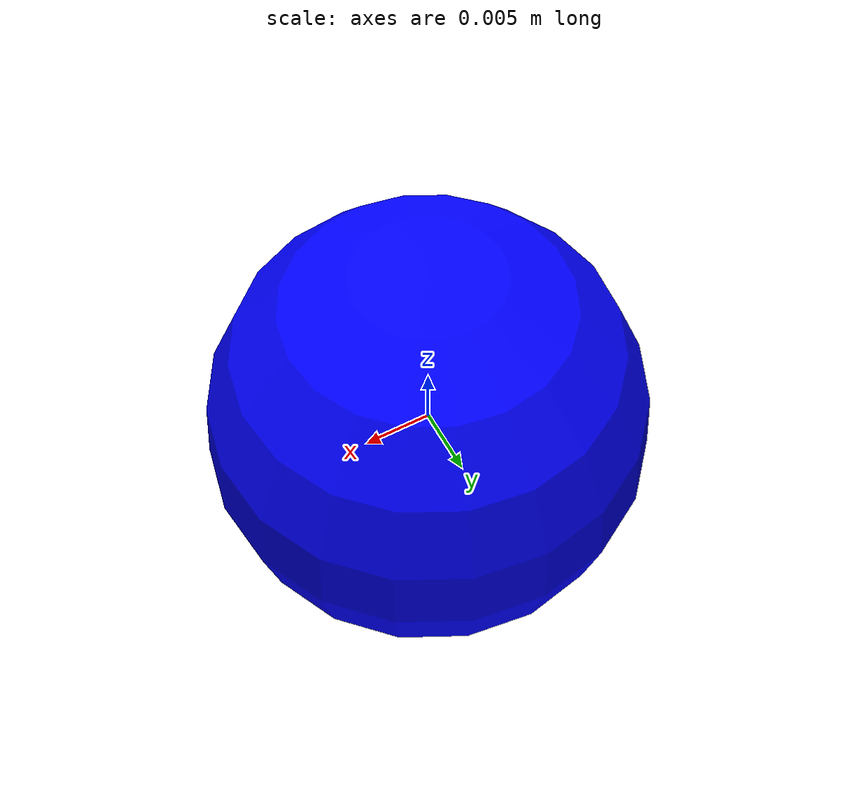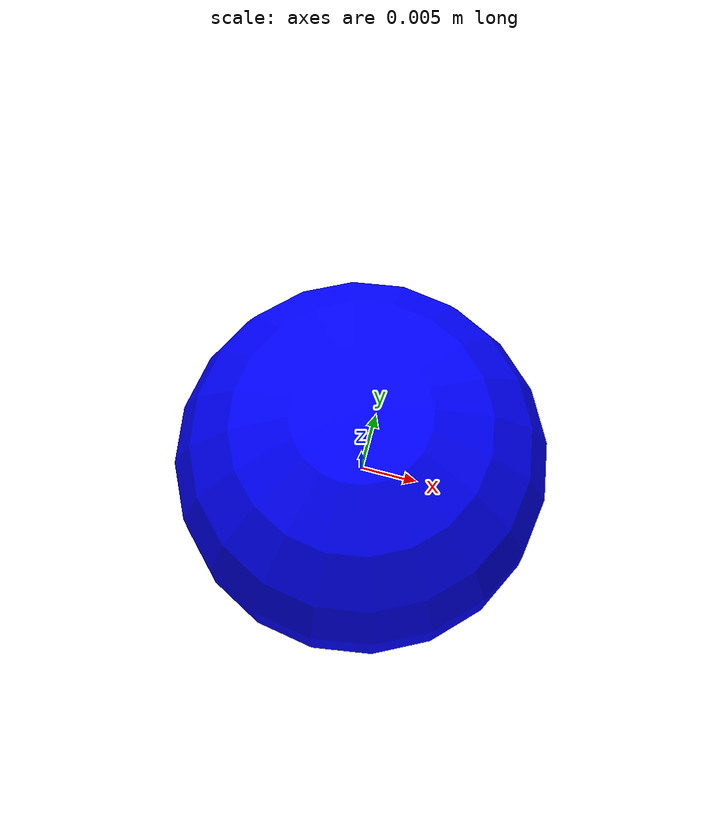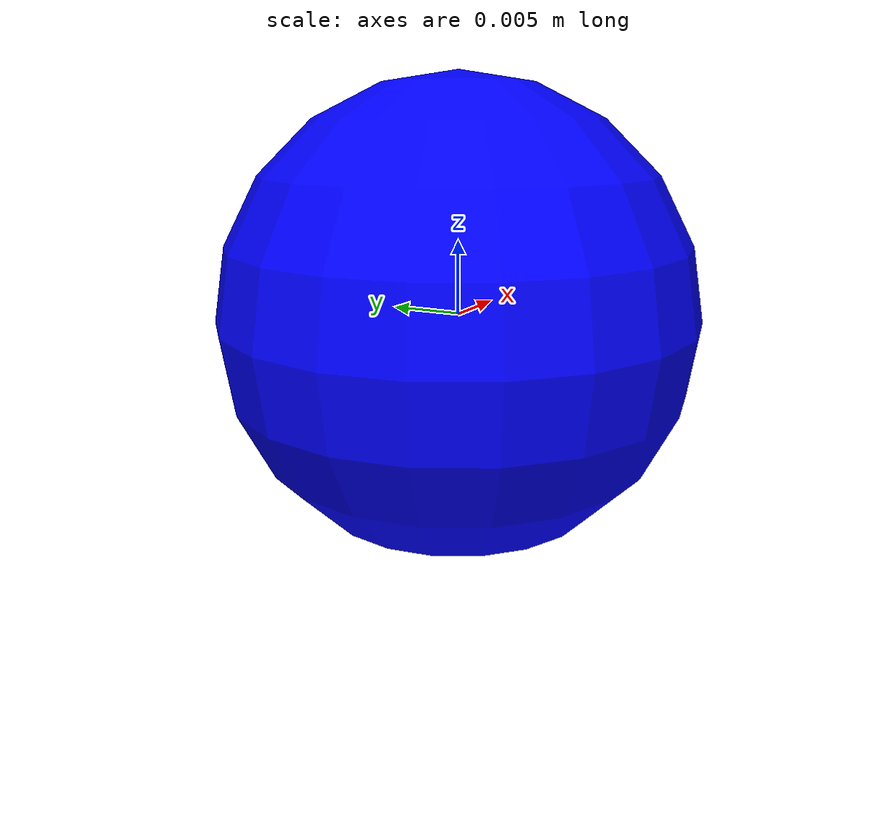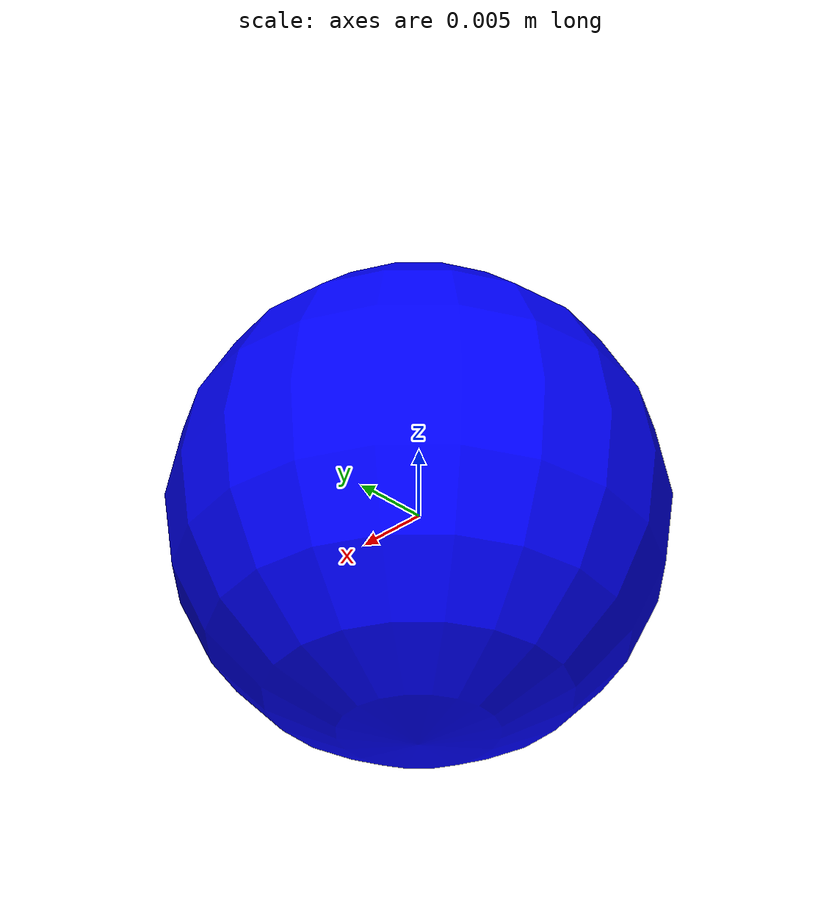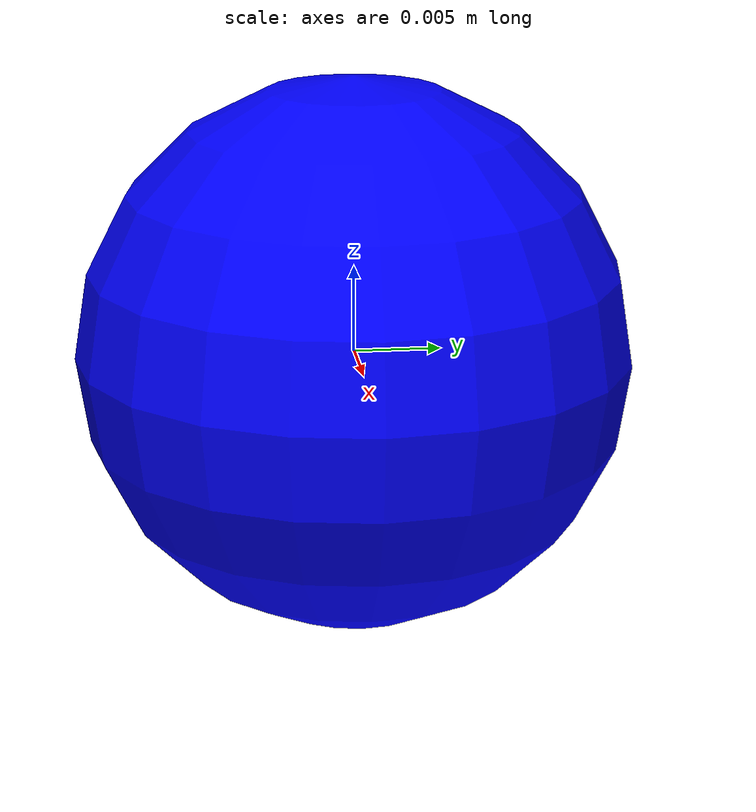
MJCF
<mujoco model="maze_ball">
  <asset>
    <texture name="tex_ball" type="2d" builtin="flat" rgb1="0 0 1" width="512" height="512"/>
    <material name="mat_ball" texture="tex_ball" shininess="0.3" specular="0.3"/>
  </asset>
  <worldbody>
    <body>
      <body name="object">
        <geom name="ball_geom" type="sphere" size="0.016" material="mat_ball"
              density="1000" friction="0.005 0.0005 0.00001" solref="0.002 1" solimp="0.99 0.99 0.001"
              condim="4" group="1"/>
        <geom name="ball_vis" type="sphere" size="0.016" material="mat_ball"
              contype="0" conaffinity="0" group="0"/>
        <site name="bottom_site" pos="0 0 -0.016" size="0.002" rgba="0 0 0 0"/>
        <site name="top_site" pos="0 0 0.016" size="0.002" rgba="0 0 0 0"/>
        <site name="horizontal_radius_site" pos="0.016 0 0" size="0.002" rgba="0 0 0 0"/>
      </body>
    </body>
  </worldbody>
</mujoco>
